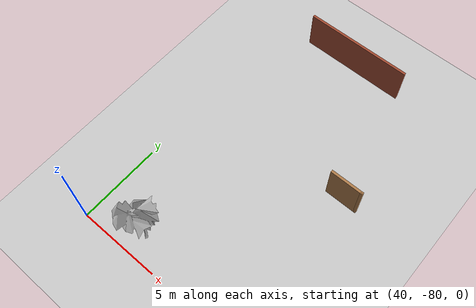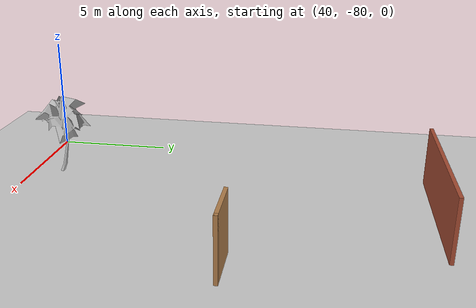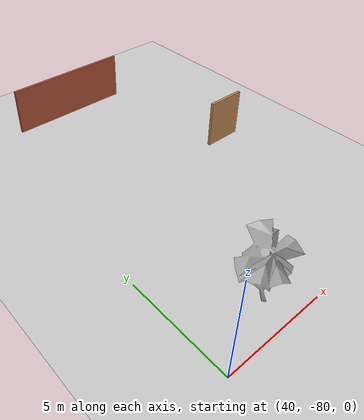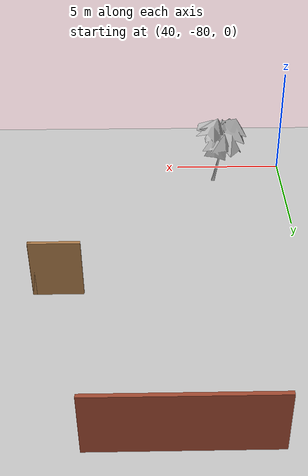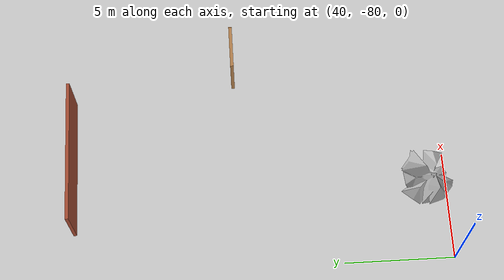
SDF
<sdf version="1.6">
 <world name="default">
  <model name="map_palace_v2_model_1_0">
   <pose>-3.1e-05 -55 0 0 -0 3.14</pose>
   <link name="Wall_88">
    <collision name="Wall_88_Collision">
     <geometry><box><size>6.50992 0.15 2.5</size></box></geometry>
     <pose>0 0 1.25 0 -0 0</pose>
    </collision>
    <visual name="Wall_88_Visual">
     <pose>0 0 1.25 0 -0 0</pose>
     <geometry><box><size>6.50992 0.15 2.5</size></box></geometry>
     <material>
      <script><uri>file://media/materials/scripts/gazebo.material</uri><name>Gazebo/Bricks</name></script>
      <ambient>1 1 1 1</ambient>
     </material>
     <meta><layer>0</layer></meta>
    </visual>
    <pose>-45.2394 7.75724 0 0 -0 -3.13852</pose>
   </link>
   <static>1</static>
  </model>
  <model name="tree3_clone_5">
   <link name="link_1">
    <inertial>
     <mass>1</mass>
     <inertia>
      <ixx>0.166667</ixx>
      <ixy>0</ixy>
      <ixz>0</ixz>
      <iyy>0.166667</iyy>
      <iyz>0</iyz>
      <izz>0.166667</izz>
     </inertia>
    </inertial>
    <visual name="visual">
     <geometry><mesh><uri>model://tree3/Palmera.obj</uri><scale>1 1 1</scale></mesh></geometry>
    </visual>
    <collision name="collision">
     <geometry><mesh><uri>model://tree3/Palmera.obj</uri><scale>1 1 1</scale></mesh></geometry>
     <surface>
      <friction>
       <ode><mu>1</mu><mu2>1</mu2><fdir1>0 0 0</fdir1><slip1>0</slip1><slip2>0</slip2></ode>
       <torsional>
        <coefficient>1</coefficient>
        <patch_radius>0</patch_radius>
        <surface_radius>0</surface_radius>
        <use_patch_radius>1</use_patch_radius>
        <ode><slip>0</slip></ode>
       </torsional>
      </friction>
      <bounce><restitution_coefficient>0</restitution_coefficient><threshold>1e+06</threshold></bounce>
      <contact>
       <collide_without_contact>0</collide_without_contact>
       <collide_without_contact_bitmask>1</collide_without_contact_bitmask>
       <collide_bitmask>1</collide_bitmask>
       <ode>
        <soft_cfm>0</soft_cfm>
        <soft_erp>0.2</soft_erp>
        <kp>1e+13</kp>
        <kd>1</kd>
        <max_vel>0.01</max_vel>
        <min_depth>0</min_depth>
       </ode>
       <bullet>
        <split_impulse>1</split_impulse>
        <split_impulse_penetration_threshold>-0.01</split_impulse_penetration_threshold>
        <soft_cfm>0</soft_cfm>
        <soft_erp>0.2</soft_erp>
        <kp>1e+13</kp>
        <kd>1</kd>
       </bullet>
      </contact>
     </surface>
    </collision>
   </link>
   <static>1</static>
   <pose>43.3168 -78.769 0 0 -0 0</pose>
  </model>
  <model name="wall_17">
   <pose>49.9634 -70.3714 0 0 -0 0</pose>
   <link name="Wall_2">
    <collision name="Wall_2_Collision">
     <geometry><box><size>2 0.15 2.5</size></box></geometry>
     <pose>0 0 1.25 0 -0 0</pose>
    </collision>
    <visual name="Wall_2_Visual">
     <pose>0 0 1.25 0 -0 0</pose>
     <geometry><box><size>2 0.15 2.5</size></box></geometry>
     <material>
      <script><uri>file://media/materials/scripts/gazebo.material</uri><name>Gazebo/Wood</name></script>
      <ambient>1 1 1 1</ambient>
     </material>
     <meta><layer>0</layer></meta>
    </visual>
    <pose>-0.005 -0 0 0 -0 0</pose>
   </link>
   <link name="Wall_3">
    <collision name="Wall_3_Collision">
     <geometry><box><size>0.16 0.15 2.5</size></box></geometry>
     <pose>0 0 1.25 0 -0 0</pose>
    </collision>
    <visual name="Wall_3_Visual">
     <pose>0 0 1.25 0 -0 0</pose>
     <geometry><box><size>0.16 0.15 2.5</size></box></geometry>
     <material>
      <script><uri>file://media/materials/scripts/gazebo.material</uri><name>Gazebo/Wood</name></script>
      <ambient>1 1 1 1</ambient>
     </material>
     <meta><layer>0</layer></meta>
    </visual>
    <pose>0.925 0 0 0 -0 0</pose>
   </link>
   <static>1</static>
  </model>
  <model name="ground_plane">
   <static>1</static>
   <link name="link">
    <collision name="collision">
     <geometry><plane><normal>0 0 1</normal><size>100 100</size></plane></geometry>
     <surface>
      <contact><collide_bitmask>65535</collide_bitmask></contact>
      <friction><ode><mu>100</mu><mu2>50</mu2></ode></friction>
     </surface>
    </collision>
    <visual name="visual">
     <cast_shadows>0</cast_shadows>
     <geometry><plane><normal>0 0 1</normal><size>100 100</size></plane></geometry>
     <material>
      <script><uri>file://media/materials/scripts/gazebo.material</uri><name>Gazebo/Grey</name></script>
     </material>
    </visual>
   </link>
   <pose>9.31394 52.073 0 0 -0 0</pose>
  </model>
 </world>
</sdf>
